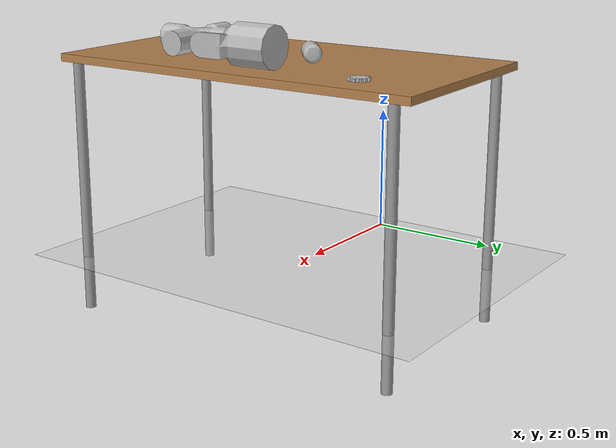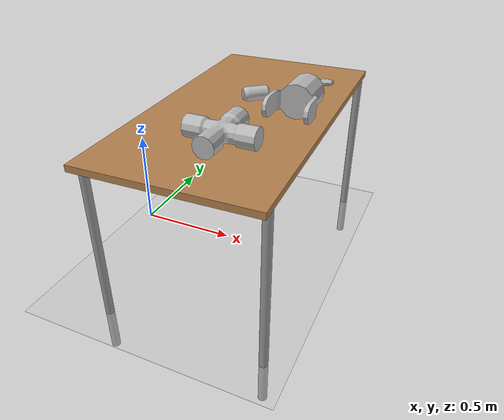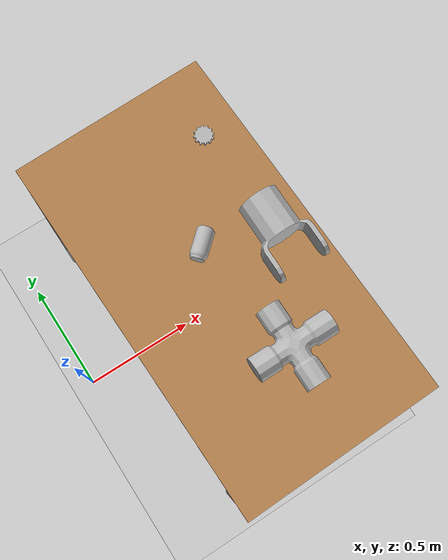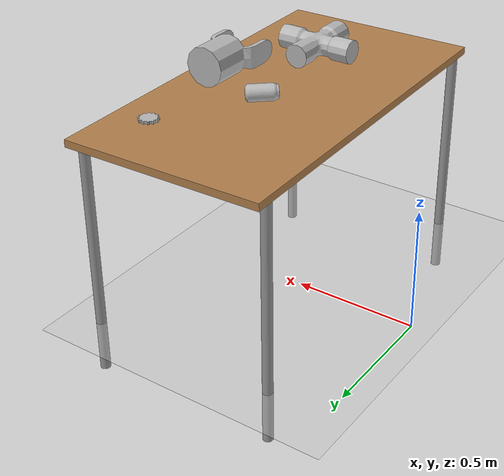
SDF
<sdf version="1.7">
 <world name="default">
  <model name="ground_plane">
   <static>1</static>
   <link name="link">
    <collision name="collision">
     <geometry><plane><normal>0 0 1</normal><size>100 100</size></plane></geometry>
     <surface><friction><ode><mu>100</mu><mu2>50</mu2></ode></friction></surface>
    </collision>
    <visual name="visual">
     <cast_shadows>0</cast_shadows>
     <geometry><plane><normal>0 0 1</normal><size>100 100</size></plane></geometry>
     <material>
      <script><uri>file://media/materials/scripts/gazebo.material</uri><name>Gazebo/Grey</name></script>
     </material>
    </visual>
   </link>
  </model>
  <model name="table">
   <static>1</static>
   <link name="link">
    <collision name="surface">
     <pose>0 0 1 0 -0 0</pose>
     <geometry><box><size>1.5 0.8 0.03</size></box></geometry>
     <surface><friction><ode><mu>0.6</mu><mu2>0.6</mu2></ode></friction></surface>
    </collision>
    <visual name="visual1">
     <pose>0 0 1 0 -0 0</pose>
     <geometry><box><size>1.5 0.8 0.03</size></box></geometry>
     <material>
      <script><uri>file://media/materials/scripts/gazebo.material</uri><name>Gazebo/Wood</name></script>
     </material>
    </visual>
    <collision name="front_left_leg">
     <pose>0.68 0.38 0.5 0 -0 0</pose>
     <geometry><cylinder><radius>0.02</radius><length>1</length></cylinder></geometry>
    </collision>
    <visual name="front_left_leg">
     <pose>0.68 0.38 0.5 0 -0 0</pose>
     <geometry><cylinder><radius>0.02</radius><length>1</length></cylinder></geometry>
     <material>
      <script><uri>file://media/materials/scripts/gazebo.material</uri><name>Gazebo/Grey</name></script>
     </material>
    </visual>
    <collision name="front_right_leg">
     <pose>0.68 -0.38 0.5 0 -0 0</pose>
     <geometry><cylinder><radius>0.02</radius><length>1</length></cylinder></geometry>
    </collision>
    <visual name="front_right_leg">
     <pose>0.68 -0.38 0.5 0 -0 0</pose>
     <geometry><cylinder><radius>0.02</radius><length>1</length></cylinder></geometry>
     <material>
      <script><uri>file://media/materials/scripts/gazebo.material</uri><name>Gazebo/Grey</name></script>
     </material>
    </visual>
    <collision name="back_right_leg">
     <pose>-0.68 -0.38 0.5 0 -0 0</pose>
     <geometry><cylinder><radius>0.02</radius><length>1</length></cylinder></geometry>
    </collision>
    <visual name="back_right_leg">
     <pose>-0.68 -0.38 0.5 0 -0 0</pose>
     <geometry><cylinder><radius>0.02</radius><length>1</length></cylinder></geometry>
     <material>
      <script><uri>file://media/materials/scripts/gazebo.material</uri><name>Gazebo/Grey</name></script>
     </material>
    </visual>
    <collision name="back_left_leg">
     <pose>-0.68 0.38 0.5 0 -0 0</pose>
     <geometry><cylinder><radius>0.02</radius><length>1</length></cylinder></geometry>
    </collision>
    <visual name="back_left_leg">
     <pose>-0.68 0.38 0.5 0 -0 0</pose>
     <geometry><cylinder><radius>0.02</radius><length>1</length></cylinder></geometry>
     <material>
      <script><uri>file://media/materials/scripts/gazebo.material</uri><name>Gazebo/Grey</name></script>
     </material>
    </visual>
   </link>
   <pose>0.628743 -0.054706 -0.216115 0 0 -1.54736</pose>
  </model>
  <model name="coke_can">
   <link name="link">
    <inertial>
     <pose>0 0 0.06 0 -0 0</pose>
     <mass>0.39</mass>
     <inertia>
      <ixx>0.00055575</ixx>
      <ixy>0</ixy>
      <ixz>0</ixz>
      <iyy>0.00055575</iyy>
      <iyz>0</iyz>
      <izz>0.0001755</izz>
     </inertia>
    </inertial>
    <collision name="collision">
     <pose>0.003937 0.004724 -0.18 0 -0 0</pose>
     <geometry><mesh><uri>model://coke_can/meshes/coke_can.dae</uri></mesh></geometry>
     <surface>
      <friction><ode><mu>1</mu><mu2>1</mu2></ode></friction>
      <contact><ode><kp>1e+07</kp><kd>1</kd><min_depth>0.001</min_depth><max_vel>0.1</max_vel></ode></contact>
     </surface>
    </collision>
    <visual name="visual">
     <pose>0.003937 0.004724 -0.18 0 -0 0</pose>
     <geometry><mesh><uri>model://coke_can/meshes/coke_can.dae</uri></mesh></geometry>
    </visual>
   </link>
   <pose>0.680915 0.112378 0.830991 -1.56706 0.784147 2.29425</pose>
  </model>
  <model name="cross_joint_part">
   <link name="link">
    <inertial>
     <pose>0 0 0.048275 0 -0 0</pose>
     <mass>0.5</mass>
     <inertia>
      <ixx>0.00455435</ixx>
      <ixy>0</ixy>
      <ixz>0</ixz>
      <iyy>0.00455435</iyy>
      <iyz>0</iyz>
      <izz>0.00833187</izz>
     </inertia>
    </inertial>
    <collision name="collisionY">
     <pose>0 0 0.048275 1.5707 -0 0</pose>
     <geometry><cylinder><length>0.3162</length><radius>0.0483</radius></cylinder></geometry>
    </collision>
    <collision name="collisionX">
     <pose>0 0 0.048275 0 1.5707 0</pose>
     <geometry><cylinder><length>0.3162</length><radius>0.0483</radius></cylinder></geometry>
    </collision>
    <visual name="visual">
     <geometry><mesh><uri>model://cross_joint_part/meshes/cross_joint.dae</uri></mesh></geometry>
     <material>
      <script>
       <uri>model://arm_part/materials/scripts</uri>
       <uri>model://arm_part/materials/textures</uri>
       <name>ArmPart/Diffuse</name>
      </script>
     </material>
    </visual>
   </link>
   <pose>0.695252 -0.407846 0.798902 0.000111 8.2e-05 0</pose>
  </model>
  <model name="gear_part">
   <link name="link">
    <inertial>
     <pose>0 0 0.005875 0 -0 0</pose>
     <mass>0.5</mass>
     <inertia>
      <ixx>0.000198203</ixx>
      <ixy>0</ixy>
      <ixz>0</ixz>
      <iyy>0.000198203</iyy>
      <iyz>0</iyz>
      <izz>0.000384405</izz>
     </inertia>
    </inertial>
    <collision name="collision">
     <pose>0 0 0.005875 0 -0 0</pose>
     <geometry><cylinder><length>0.012</length><radius>0.0392125</radius></cylinder></geometry>
     <surface><contact><ode><max_vel>0.1</max_vel><min_depth>0.001</min_depth></ode></contact></surface>
    </collision>
    <visual name="visual">
     <geometry><mesh><uri>model://gear_part/meshes/gear.dae</uri><scale>0.25 0.25 0.25</scale></mesh></geometry>
     <material>
      <script>
       <uri>model://arm_part/materials/scripts</uri>
       <uri>model://arm_part/materials/textures</uri>
       <name>ArmPart/Diffuse</name>
      </script>
     </material>
    </visual>
   </link>
   <pose>0.869462 0.426618 0.798572 0 -0 0</pose>
  </model>
  <model name="u_joint_part">
   <pose>0.879431 0.090609 0.878175 1.5708 -0 0</pose>
   <link name="link">
    <inertial>
     <pose>0 0 0.08086 0 -0 0</pose>
     <mass>0.5</mass>
     <inertia>
      <ixx>0.00187559</ixx>
      <ixy>0</ixy>
      <ixz>0</ixz>
      <iyy>0.00187559</iyy>
      <iyz>0</iyz>
      <izz>0.00157173</izz>
     </inertia>
    </inertial>
    <collision name="collision1">
     <pose>0 0 0.08086 0 -0 0</pose>
     <geometry><cylinder><radius>0.07929</radius><length>0.16172</length></cylinder></geometry>
    </collision>
    <collision name="collision2">
     <pose>-0.09124 0 0.22804 0 -0 0</pose>
     <geometry><box><size>0.01716 0.08862 0.13878</size></box></geometry>
    </collision>
    <collision name="collision3">
     <pose>0.09124 0 0.22804 0 -0 0</pose>
     <geometry><box><size>0.01716 0.08862 0.13878</size></box></geometry>
    </collision>
    <visual name="visual">
     <geometry><mesh><uri>model://u_joint_part/meshes/u_joint.dae</uri></mesh></geometry>
     <material>
      <script>
       <uri>model://arm_part/materials/scripts</uri>
       <uri>model://arm_part/materials/textures</uri>
       <name>ArmPart/Diffuse</name>
      </script>
     </material>
    </visual>
   </link>
  </model>
 </world>
</sdf>
